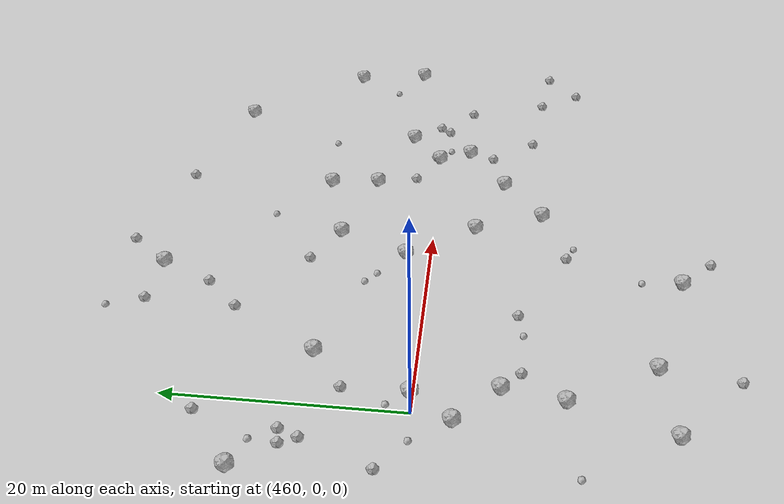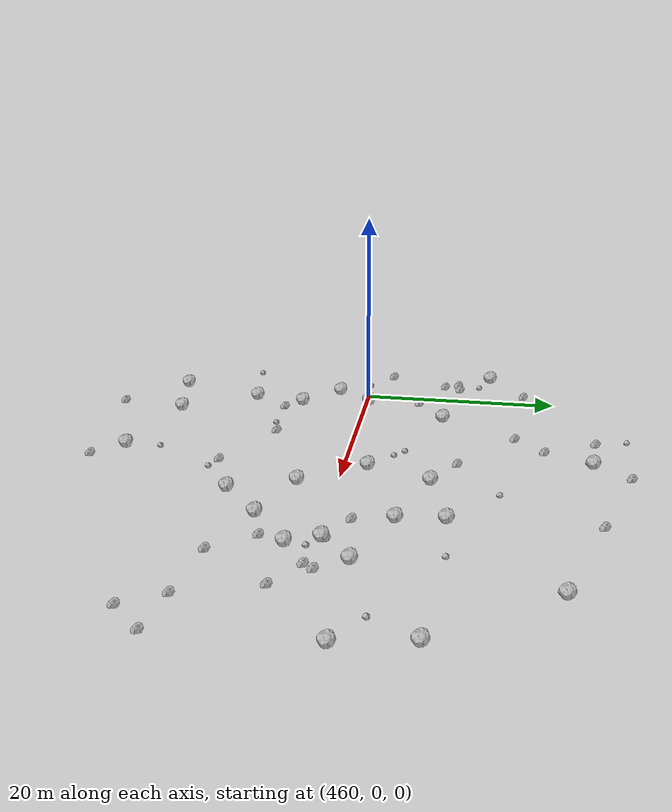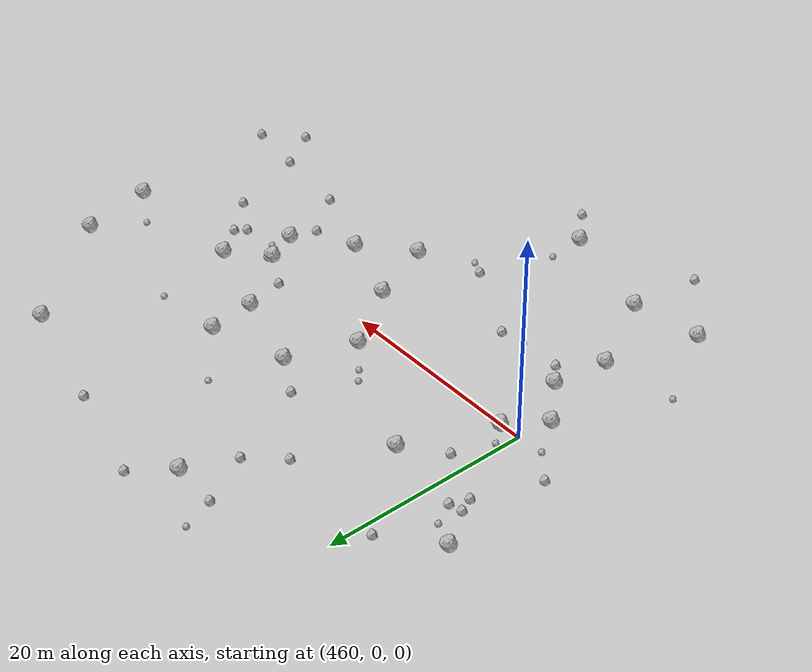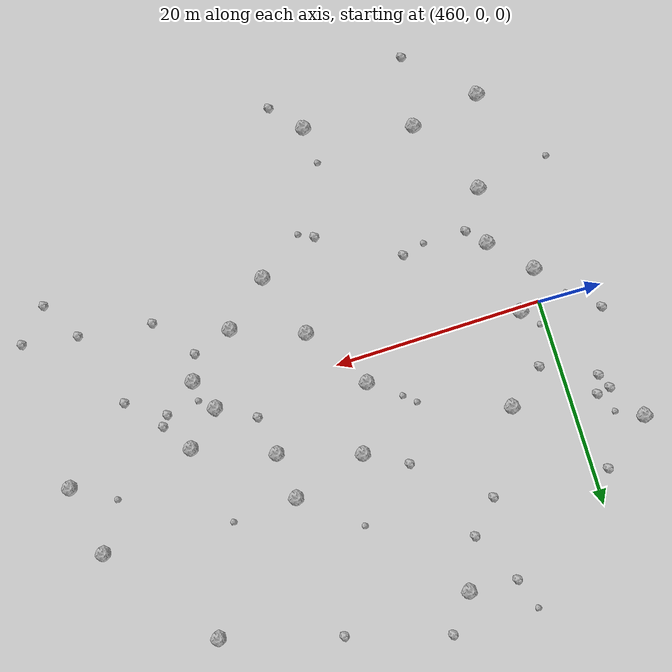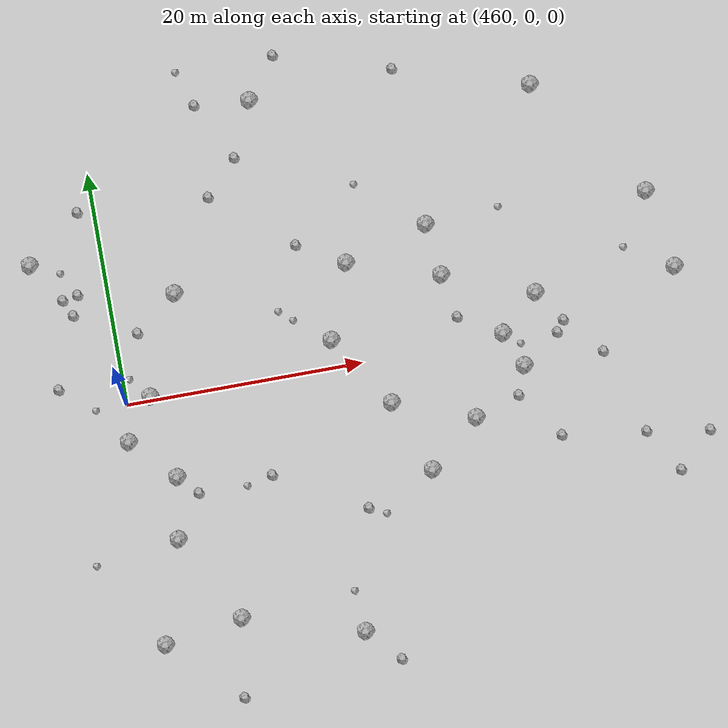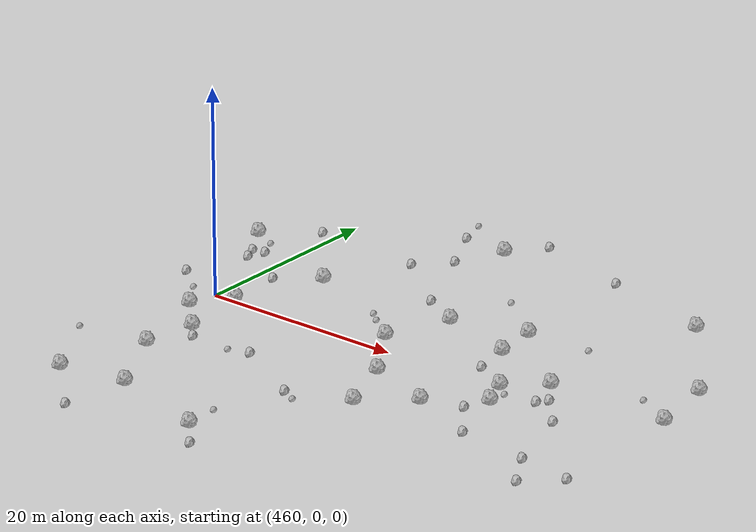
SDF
<sdf version="1.6">
 <world name="default">
  <include><uri>model://sun</uri></include>
  <model name="rock1_12_4">
   <include><uri>model://rock1</uri><pose>507.2593965279736 3.37235853863875 0.5 0 0 0</pose></include>
  </model>
  <model name="rock1_12_5">
   <include><uri>model://rock1</uri><pose>484.1561033042756 -9.963880560496182 0.5 0 0 0</pose></include>
  </model>
  <model name="rock1_12_6">
   <include><uri>model://rock1</uri><pose>506.0926604658215 10.147953274436041 0.5 0 0 0</pose></include>
  </model>
  <model name="rock1_12_7">
   <include><uri>model://rock1</uri><pose>462.0378647745527 0.2943616095686963 0.5 0 0 0</pose></include>
  </model>
  <model name="rock1_12_8">
   <include><uri>model://rock1</uri><pose>481.8135104320958 -3.8018701074129737 0.5 0 0 0</pose></include>
  </model>
  <model name="rock1_12_9">
   <include><uri>model://rock1</uri><pose>477.7847362716572 2.3161017026809247 0.5 0 0 0</pose></include>
  </model>
  <model name="rock1_12_10">
   <include><uri>model://rock1</uri><pose>459.76794299504917 -20.417999775224267 0.5 0 0 0</pose></include>
  </model>
  <model name="rock1_12_11">
   <include><uri>model://rock1</uri><pose>463.09768392585465 -6.785525528183083 0.5 0 0 0</pose></include>
  </model>
  <model name="rock1_12_12">
   <include><uri>model://rock1</uri><pose>487.83564491819897 6.13519006144152 0.5 0 0 0</pose></include>
  </model>
  <model name="rock1_12_13">
   <include><uri>model://rock1</uri><pose>465.5208984075863 8.569413976372807 0.5 0 0 0</pose></include>
  </model>
  <model name="rock1_12_14">
   <include><uri>model://rock1</uri><pose>492.043834981849 0.31784318700682235 0.5 0 0 0</pose></include>
  </model>
  <model name="rock1_12_15">
   <include><uri>model://rock1</uri><pose>488.5404100740418 -6.292851375527238 0.5 0 0 0</pose></include>
  </model>
  <model name="rock1_12_16">
   <include><uri>model://rock1</uri><pose>480.1513161657141 8.568724998982894 0.5 0 0 0</pose></include>
  </model>
  <model name="rock1_12_17">
   <include><uri>model://rock1</uri><pose>459.6302528269894 -3.1715073093674846 0.5 0 0 0</pose></include>
  </model>
  <model name="rock1_12_18">
   <include><uri>model://rock1</uri><pose>493.2993720166236 -2.683148623110057 0.5 0 0 0</pose></include>
  </model>
  <model name="rock1_12_19">
   <include><uri>model://rock1</uri><pose>498.18774169709144 20.903980433258702 0.5 0 0 0</pose></include>
  </model>
  <model name="rock1_12_20">
   <include><uri>model://rock1</uri><pose>462.30174338609214 -11.941305767034383 0.5 0 0 0</pose></include>
  </model>
  <model name="rock1_12_21">
   <include><uri>model://rock1</uri><pose>466.34732130134097 -19.33468735615846 0.5 0 0 0</pose></include>
  </model>
  <model name="rock1_12_22">
   <include><uri>model://rock1</uri><pose>495.3546944142923 3.255833436564039 0.5 0 0 0</pose></include>
  </model>
  <model name="rock1_12_23">
   <include><uri>model://rock1</uri><pose>476.2616770954328 -22.24972824726639 0.5 0 0 0</pose></include>
  </model>
  <model name="rock1_12_24">
   <include><uri>model://rock1</uri><pose>487.33827993196314 10.620445850891578 0.5 0 0 0</pose></include>
  </model>
  <model name="rock1_12_25">
   <include><uri>model://rock1</uri><pose>453.97041095916046 13.054589368248749 0.5 0 0 0</pose></include>
  </model>
  <model name="rock1_12_26">
   <include><uri>model://rock1</uri><pose>474.5773445871306 23.775389566299786 0.5 0 0 0</pose></include>
  </model>
  <model name="rock2_12_0">
   <include><uri>model://rock2</uri><pose>477.1782146445639 27.27704078168938 0.3 0 0 0</pose></include>
  </model>
  <model name="rock2_12_1">
   <include><uri>model://rock2</uri><pose>504.54217731507924 -13.658359291391413 0.3 0 0 0</pose></include>
  </model>
  <model name="rock2_12_2">
   <include><uri>model://rock2</uri><pose>457.4724529509431 9.886399251395787 0.3 0 0 0</pose></include>
  </model>
  <model name="rock2_12_3">
   <include><uri>model://rock2</uri><pose>478.791757895971 -25.041410624724197 0.3 0 0 0</pose></include>
  </model>
  <model name="rock2_12_4">
   <include><uri>model://rock2</uri><pose>478.33716660537567 -12.164345373869796 0.3 0 0 0</pose></include>
  </model>
  <model name="rock2_12_5">
   <include><uri>model://rock2</uri><pose>454.5805788985934 2.2183336237008078 0.3 0 0 0</pose></include>
  </model>
  <model name="rock2_12_6">
   <include><uri>model://rock2</uri><pose>488.50329365003495 2.383022113069913 0.3 0 0 0</pose></include>
  </model>
  <model name="rock2_12_7">
   <include><uri>model://rock2</uri><pose>469.8883970899571 24.178605633155605 0.3 0 0 0</pose></include>
  </model>
  <model name="rock2_12_8">
   <include><uri>model://rock2</uri><pose>495.29709113336446 -9.009063168901758 0.3 0 0 0</pose></include>
  </model>
  <model name="rock2_12_9">
   <include><uri>model://rock2</uri><pose>486.91746723392214 24.333937221908556 0.3 0 0 0</pose></include>
  </model>
  <model name="rock2_12_10">
   <include><uri>model://rock2</uri><pose>458.6192506627098 16.848187980218242 0.3 0 0 0</pose></include>
  </model>
  <model name="rock2_12_11">
   <include><uri>model://rock2</uri><pose>470.89820496677373 -8.019787908233607 0.3 0 0 0</pose></include>
  </model>
  <model name="rock2_12_12">
   <include><uri>model://rock2</uri><pose>465.4145854543502 -25.881970220219074 0.3 0 0 0</pose></include>
  </model>
  <model name="rock2_12_13">
   <include><uri>model://rock2</uri><pose>492.36093572907197 -5.055278634703278 0.3 0 0 0</pose></include>
  </model>
  <model name="rock2_12_14">
   <include><uri>model://rock2</uri><pose>476.2372626988012 10.832177289000136 0.3 0 0 0</pose></include>
  </model>
  <model name="rock2_12_15">
   <include><uri>model://rock2</uri><pose>502.3118459932649 -9.95807897176411 0.3 0 0 0</pose></include>
  </model>
  <model name="rock2_12_16">
   <include><uri>model://rock2</uri><pose>456.8245732478183 8.216775652111671 0.3 0 0 0</pose></include>
  </model>
  <model name="rock2_12_17">
   <include><uri>model://rock2</uri><pose>456.17169848900875 9.644272467894012 0.3 0 0 0</pose></include>
  </model>
  <model name="rock2_12_18">
   <include><uri>model://rock2</uri><pose>464.6188133388668 -8.410033711146468 0.3 0 0 0</pose></include>
  </model>
  <model name="rock2_12_19">
   <include><uri>model://rock2</uri><pose>500.02629230982086 -2.658299637127463 0.3 0 0 0</pose></include>
  </model>
  <model name="rock2_12_20">
   <include><uri>model://rock2</uri><pose>492.1409239198631 0.6777970144178944 0.3 0 0 0</pose></include>
  </model>
  <model name="rock2_12_21">
   <include><uri>model://rock2</uri><pose>496.5236248873062 -0.38756916652505424 0.3 0 0 0</pose></include>
  </model>
  <model name="rock2_12_22">
   <include><uri>model://rock2</uri><pose>469.7009276381987 16.1732773396258 0.3 0 0 0</pose></include>
  </model>
  <model name="rock2_12_23">
   <include><uri>model://rock2</uri><pose>461.8736548094056 5.788360556005287 0.3 0 0 0</pose></include>
  </model>
  <model name="rock2_12_24">
   <include><uri>model://rock2</uri><pose>507.57063885998514 -10.781775856641051 0.3 0 0 0</pose></include>
  </model>
  <model name="rock2_12_25">
   <include><uri>model://rock2</uri><pose>497.2141821979654 0.5565916972316316 0.3 0 0 0</pose></include>
  </model>
  <model name="rock2_12_26">
   <include><uri>model://rock2</uri><pose>472.44431160904924 19.13346526004665 0.3 0 0 0</pose></include>
  </model>
  <model name="rock3_12_0">
   <include><uri>model://rock3</uri><pose>456.3411071125461 11.933972838705209 0.2 0 0 0</pose></include>
  </model>
  <model name="rock3_12_1">
   <include><uri>model://rock3</uri><pose>475.93117400336865 -18.787705620983527 0.2 0 0 0</pose></include>
  </model>
  <model name="rock3_12_2">
   <include><uri>model://rock3</uri><pose>493.335933164763 -0.7820937332549036 0.2 0 0 0</pose></include>
  </model>
  <model name="rock3_12_3">
   <include><uri>model://rock3</uri><pose>455.2040507853836 -12.96433166574749 0.2 0 0 0</pose></include>
  </model>
  <model name="rock3_12_4">
   <include><uri>model://rock3</uri><pose>474.89459236090875 4.532435941901582 0.2 0 0 0</pose></include>
  </model>
  <model name="rock3_12_5">
   <include><uri>model://rock3</uri><pose>493.577143416151 11.042670736263872 0.2 0 0 0</pose></include>
  </model>
  <model name="rock3_12_6">
   <include><uri>model://rock3</uri><pose>481.95250192497184 15.089346578990437 0.2 0 0 0</pose></include>
  </model>
  <model name="rock3_12_7">
   <include><uri>model://rock3</uri><pose>468.6993527407757 -8.543992546909791 0.2 0 0 0</pose></include>
  </model>
  <model name="rock3_12_8">
   <include><uri>model://rock3</uri><pose>468.80731786481977 27.281037180561633 0.2 0 0 0</pose></include>
  </model>
  <model name="rock3_12_9">
   <include><uri>model://rock3</uri><pose>503.31578067030205 5.75858657681183 0.2 0 0 0</pose></include>
  </model>
  <model name="rock3_12_10">
   <include><uri>model://rock3</uri><pose>479.7283340972959 -12.890930635075893 0.2 0 0 0</pose></include>
  </model>
  <model name="rock3_12_11">
   <include><uri>model://rock3</uri><pose>460.5380039457211 2.0446211271358123 0.2 0 0 0</pose></include>
  </model>
  <model name="rock3_12_12">
   <include><uri>model://rock3</uri><pose>457.3323302158844 -0.07233190246432386 0.2 0 0 0</pose></include>
  </model>
  <model name="rock3_12_13">
   <include><uri>model://rock3</uri><pose>473.79539590514736 5.49840685188223 0.2 0 0 0</pose></include>
  </model>
 </world>
</sdf>
